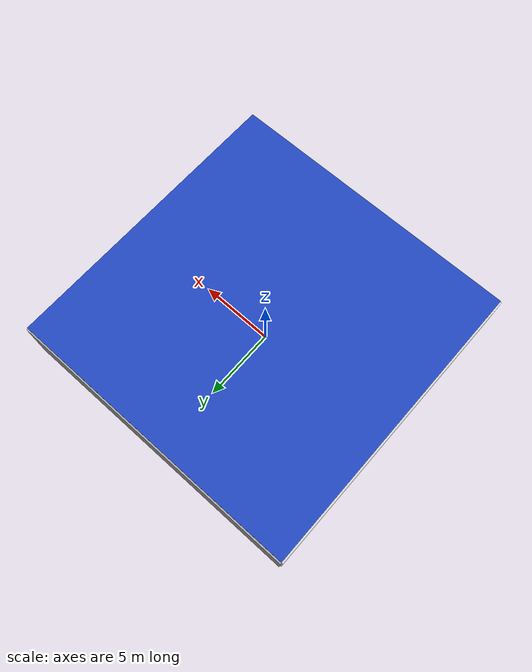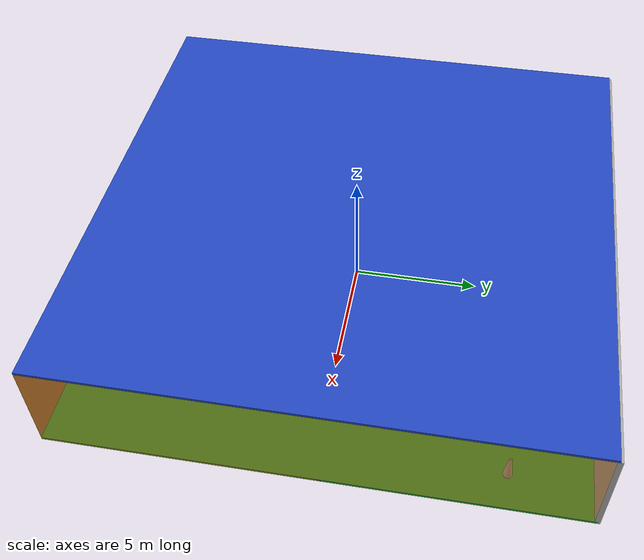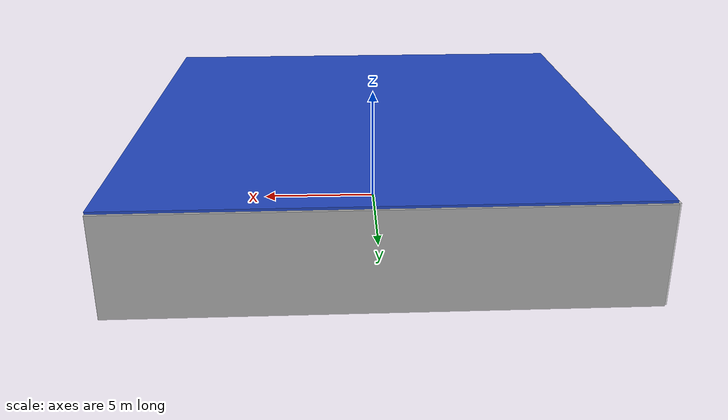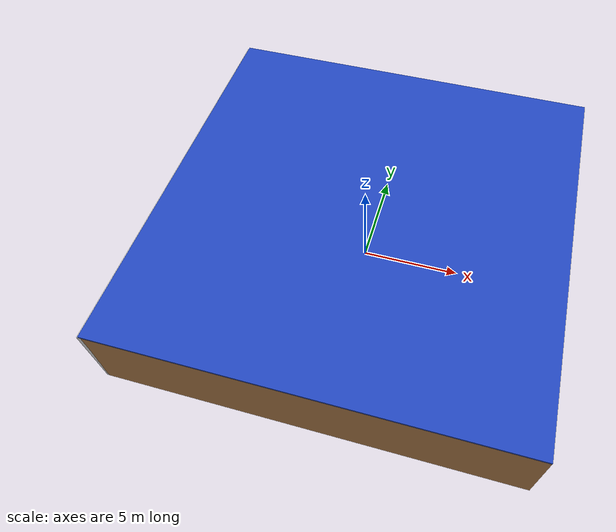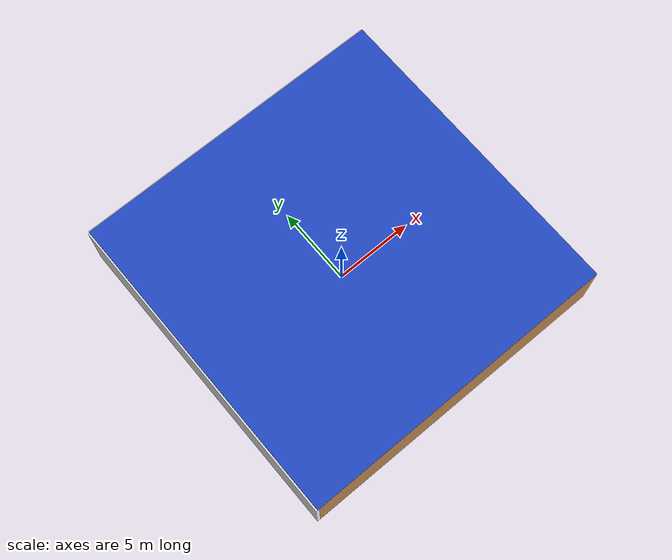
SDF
<sdf version="1.4">
 <world name="default">
  <physics type="ode">
   <max_step_size>0.001</max_step_size>
   <real_time_factor>1</real_time_factor>
   <real_time_update_rate>1000</real_time_update_rate>
   <gravity>0 0 -9.8</gravity>
  </physics>
  <scene><ambient>0.4 0.4 0.4 1</ambient><background>0.7 0.7 0.7 1</background><shadows>1</shadows></scene>
  <model name="Surrounding">
   <static>1</static>
   <link name="Ceiling">
    <collision name="Ceiling_Collision"><geometry><box><size>20 20 0.1</size></box></geometry></collision>
    <visual name="Ceiling_Visual">
     <geometry><box><size>20 20 0.1</size></box></geometry>
     <material>
      <script><uri>file://media/materials/scripts/gazebo.material</uri><name>Gazebo/Blue</name></script>
     </material>
    </visual>
    <pose>0 0 4.05 0 0 0</pose>
   </link>
   <link name="Wall_South">
    <collision name="Wall_South_Collision">
     <geometry><box><size>20 0 4</size></box></geometry>
     <pose>0 0 2 0 -0 0</pose>
    </collision>
    <visual name="Wall_South_Visual">
     <pose>0 0 2 0 -0 0</pose>
     <geometry><box><size>20 0 4</size></box></geometry>
     <material>
      <script><uri>file://media/materials/scripts/gazebo.material</uri><name>Gazebo/WoodFloor</name></script>
     </material>
    </visual>
    <velocity_decay><linear>0</linear><angular>0</angular></velocity_decay>
    <pose>0 -10 0 0 -0 0</pose>
   </link>
   <link name="Wall_East">
    <collision name="Wall_21_Collision">
     <geometry><box><size>20 0 4</size></box></geometry>
     <pose>0 0 2 0 -0 0</pose>
    </collision>
    <visual name="Wall_21_Visual">
     <pose>0 0 2 0 -0 0</pose>
     <geometry><box><size>20 0 4</size></box></geometry>
     <material>
      <script>
       <uri>file://media/materials/scripts/gazebo.material</uri>
       <name>Gazebo/OrangeTransparent</name>
      </script>
     </material>
    </visual>
    <velocity_decay><linear>0</linear><angular>0</angular></velocity_decay>
    <pose>10 0 0 0 -0 1.5708</pose>
   </link>
   <link name="Wall_North">
    <collision name="Wall_22_Collision">
     <geometry><box><size>20 0.2 4</size></box></geometry>
     <pose>0 0 2 0 -0 0</pose>
    </collision>
    <visual name="Wall_22_Visual">
     <pose>0 0 2 0 -0 0</pose>
     <geometry><box><size>20 0.2 4</size></box></geometry>
     <material>
      <script><uri>file://media/materials/scripts/gazebo.material</uri><name>Gazebo/Pioneer2Body</name></script>
     </material>
    </visual>
    <velocity_decay><linear>0</linear><angular>0</angular></velocity_decay>
    <pose>0 10 0 0 -0 0</pose>
   </link>
   <link name="Wall_West">
    <collision name="Wall_23_Collision">
     <geometry><box><size>20 0.2 4</size></box></geometry>
     <pose>0 0 2 0 -0 0</pose>
    </collision>
    <visual name="Wall_23_Visual">
     <pose>0 0 2 0 -0 0</pose>
     <geometry><box><size>20 0.2 4</size></box></geometry>
     <material>
      <script><uri>file://media/materials/scripts/gazebo.material</uri><name>Gazebo/WhiteGlow</name></script>
     </material>
    </visual>
    <velocity_decay><linear>0</linear><angular>0</angular></velocity_decay>
    <pose>-10 0 0 0 0 -1.5708</pose>
   </link>
   <link name="Ground_link">
    <collision name="collision">
     <pose>0 0 .05 0 -0 0</pose>
     <geometry><box><size>20 20 0.1</size></box></geometry>
    </collision>
    <visual name="visual">
     <pose>0 0 .05 0 -0 0</pose>
     <geometry><box><size>20 20 0.1</size></box></geometry>
     <material>
      <script><uri>file://media/materials/scripts/gazebo.material</uri><name>Gazebo/GreenGlow</name></script>
     </material>
    </visual>
   </link>
   <static>1</static>
  </model>
  <spherical_coordinates>
   <surface_model>EARTH_WGS84</surface_model>
   <latitude_deg>0</latitude_deg>
   <longitude_deg>0</longitude_deg>
   <elevation>0</elevation>
   <heading_deg>0</heading_deg>
  </spherical_coordinates>
  <light name="lightball_0" type="diffuse">
   <diffuse>0.8 0.8 0.8 1</diffuse>
   <specular>0.2 0.2 0.2 1</specular>
   <attenuation>
    <range>100</range>
    <constant>0.7</constant>
    <linear>0.01</linear>
    <quadratic>0.001</quadratic>
   </attenuation>
   <direction>-0.5 0.1 -0.9</direction>
   <pose>5.10047669687 -8.01126818519 2.43357413398 0 0 0</pose>
  </light>
  <include>
   <uri>model://textured_shapes</uri>
   <pose>-7.96756099652 0.36881184327 0 0 0 2.56109434365</pose>
  </include>
  <include><uri>model://table</uri><pose>-5.62236293048 6.6165041813 0 0 0 2.40417019664</pose></include>
  <include>
   <uri>model://construction_cone</uri>
   <pose>-2.43222069581 -6.90604457671 0 0 0 0.884618148809</pose>
  </include>
  <include>
   <uri>model://robocup_3Dsim_goal</uri>
   <pose>-1.40290532534 -3.61674312314 0 0 0 3.01386138007</pose>
  </include>
  <include>
   <uri>model://robocup_3Dsim_goal</uri>
   <pose>1.27168454091 0.559139777828 0 0 0 2.20374069237</pose>
  </include>
  <include>
   <uri>model://construction_cone</uri>
   <pose>8.66842054613 6.86990956966 0 0 0 1.54434474023</pose>
  </include>
 </world>
</sdf>

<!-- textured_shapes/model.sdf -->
<sdf version="1.6">
  <model name="textured_shapes">
    <pose>0 0 0.5 0 0 0</pose>
    <link name="box">
      <pose>0 -1.5 0 0 0 0</pose>
      <collision name="collision">
        <geometry>
          <box>
            <size>1 1 1</size>
          </box>
        </geometry>
      </collision>
      <visual name="visual">
        <geometry>
          <box>
            <size>1 1 1</size>
          </box>
        </geometry>
        <material>
          <script>
            <uri>model://../model_source/models/textured_shapes/materials/scripts</uri>
            <uri>model://../model_source/models/textured_shapes/materials/textures</uri>
            <name>TexturedShape/Squares</name>
          </script>
        </material>
      </visual>
    </link>
    <link name="sphere">
      <collision name="collision">
        <geometry>
          <sphere>
            <radius>0.5</radius>
          </sphere>
        </geometry>
      </collision>
      <visual name="visual">
        <geometry>
          <sphere>
            <radius>0.5</radius>
          </sphere>
        </geometry>
        <material>
          <script>
            <uri>model://../model_source/models/textured_shapes/materials/scripts</uri>
            <uri>model://../model_source/models/textured_shapes/materials/textures</uri>
            <name>TexturedShape/Squares</name>
          </script>
        </material>
      </visual>
    </link>
    <link name="cylinder">
      <pose>0 1.5 0 0 0 0</pose>
      <collision name="collision">
        <geometry>
          <cylinder>
            <radius>0.5</radius>
            <length>1</length>
          </cylinder>
        </geometry>
      </collision>
      <visual name="visual">
        <geometry>
          <cylinder>
            <radius>0.5</radius>
            <length>1</length>
          </cylinder>
        </geometry>
        <material>
          <script>
            <uri>model://../model_source/models/textured_shapes/materials/scripts</uri>
            <uri>model://../model_source/models/textured_shapes/materials/textures</uri>
            <name>TexturedShape/Squares</name>
          </script>
        </material>
      </visual>
    </link>
  </model>
</sdf>

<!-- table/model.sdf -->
<sdf version="1.5">
  <model name="table">
    <static>true</static>
    <link name="link">
      <collision name="surface">
        <pose>0 0 1.0 0 0 0</pose>
        <geometry>
          <box>
            <size>1.5 0.8 0.03</size>
          </box>
        </geometry>
        <surface>
          <friction>
            <ode>
              <mu>0.6</mu>
              <mu2>0.6</mu2>
            </ode>
          </friction>
        </surface>
      </collision>
      <visual name="visual1">
        <pose>0 0 1.0 0 0 0</pose>
        <geometry>
          <box>
            <size>1.5 0.8 0.03</size>
          </box>
        </geometry>
        <material>
          <script>
            <uri>model://media/materials/scripts/gazebo.material</uri>
            <name>Gazebo/Wood</name>
          </script>
        </material>
      </visual>
      <collision name="front_left_leg">
        <pose>0.68 0.38 0.5 0 0 0</pose>
        <geometry>
          <cylinder>
            <radius>0.02</radius>
            <length>1.0</length>
          </cylinder>
        </geometry>
      </collision>
      <visual name="front_left_leg">
        <pose>0.68 0.38 0.5 0 0 0</pose>
        <geometry>
          <cylinder>
            <radius>0.02</radius>
            <length>1.0</length>
          </cylinder>
        </geometry>
        <material>
          <script>
            <uri>model://media/materials/scripts/gazebo.material</uri>
            <name>Gazebo/Grey</name>
          </script>
        </material>
      </visual>
      <collision name="front_right_leg">
        <pose>0.68 -0.38 0.5 0 0 0</pose>
        <geometry>
          <cylinder>
            <radius>0.02</radius>
            <length>1.0</length>
          </cylinder>
        </geometry>
      </collision>
      <visual name="front_right_leg">
        <pose>0.68 -0.38 0.5 0 0 0</pose>
        <geometry>
          <cylinder>
            <radius>0.02</radius>
            <length>1.0</length>
          </cylinder>
        </geometry>
        <material>
          <script>
            <uri>model://media/materials/scripts/gazebo.material</uri>
            <name>Gazebo/Grey</name>
          </script>
        </material>
      </visual>
      <collision name="back_right_leg">
        <pose>-0.68 -0.38 0.5 0 0 0</pose>
        <geometry>
          <cylinder>
            <radius>0.02</radius>
            <length>1.0</length>
          </cylinder>
        </geometry>
      </collision>
      <visual name="back_right_leg">
        <pose>-0.68 -0.38 0.5 0 0 0</pose>
        <geometry>
          <cylinder>
            <radius>0.02</radius>
            <length>1.0</length>
          </cylinder>
        </geometry>
        <material>
          <script>
            <uri>model://media/materials/scripts/gazebo.material</uri>
            <name>Gazebo/Grey</name>
          </script>
        </material>
      </visual>
      <collision name="back_left_leg">
        <pose>-0.68 0.38 0.5 0 0 0</pose>
        <geometry>
          <cylinder>
            <radius>0.02</radius>
            <length>1.0</length>
          </cylinder>
        </geometry>
      </collision>
      <visual name="back_left_leg">
        <pose>-0.68 0.38 0.5 0 0 0</pose>
        <geometry>
          <cylinder>
            <radius>0.02</radius>
            <length>1.0</length>
          </cylinder>
        </geometry>
        <material>
          <script>
            <uri>model://media/materials/scripts/gazebo.material</uri>
            <name>Gazebo/Grey</name>
          </script>
        </material>
      </visual>
    </link>
  </model>
</sdf>

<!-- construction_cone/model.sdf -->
<sdf version="1.5">
  <model name="Construction Cone">
    <link name="link">
      <collision name="collision">
        <geometry>
          <mesh>
            <scale>10 10 10</scale>
            <uri>file://isr-testbed/construction_cone/meshes/construction_cone.dae</uri>
          </mesh>
        </geometry>
      </collision>
      <visual name="visual">
        <geometry>
          <mesh>
            <scale>10 10 10</scale>
            <uri>file://isr-testbed/construction_cone/meshes/construction_cone.dae</uri>
          </mesh>
        </geometry>
      </visual>
    </link>
  </model>
</sdf>

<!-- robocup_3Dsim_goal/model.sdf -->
<sdf version="1.5">
  <model name="robocup_3d_goal">
    <static>true</static>
    <link name="left_post">
      <pose>0 1.05 0.45 0 0 0</pose>
      <collision name="collision">
        <geometry>
          <cylinder>
            <radius>0.05</radius>
            <length>0.9</length>
          </cylinder>
        </geometry>
      </collision>
      <visual name="visual">
        <geometry>
          <cylinder>
            <radius>0.05</radius>
            <length>0.9</length>
          </cylinder>
        </geometry>
        <material>
          <script>
            <uri>file://media/materials/scripts/gazebo.material</uri>
            <name>Gazebo/ZincYellow</name>
          </script>
        </material>
      </visual>
    </link>
    <link name="left_support_horiz_lower">
      <pose>0.30 1.05 0.01 0 0 0</pose>
      <collision name="collision">
        <geometry>
          <box>
            <size>0.50 0.02 0.02</size>
          </box>
        </geometry>
      </collision>
      <visual name="visual">
        <geometry>
          <box>
            <size>0.50 0.02 0.02</size>
          </box>
        </geometry>
        <material>
          <script>
            <uri>file://media/materials/scripts/gazebo.material</uri>
            <name>Gazebo/White</name>
          </script>
        </material>
      </visual>
    </link>
    <link name="left_support_horiz_upper">
      <pose>0.30 1.05 0.79 0 0 0</pose>
      <collision name="collision">
        <geometry>
          <box>
            <size>0.50 0.02 0.02</size>
          </box>
        </geometry>
      </collision>
      <visual name="visual">
        <geometry>
          <box>
            <size>0.50 0.02 0.02</size>
          </box>
        </geometry>
        <material>
          <script>
            <uri>file://media/materials/scripts/gazebo.material</uri>
            <name>Gazebo/White</name>
          </script>
        </material>
      </visual>
    </link>
    <link name="left_support_vertical">
      <pose>0.56 1.05 0.4 0 1.5708 0</pose>
      <collision name="collision">
        <geometry>
          <box>
            <size>0.80 0.02 0.02</size>
          </box>
        </geometry>
      </collision>
      <visual name="visual">
        <geometry>
          <box>
            <size>0.80 0.02 0.02</size>
          </box>
        </geometry>
        <material>
          <script>
            <uri>file://media/materials/scripts/gazebo.material</uri>
            <name>Gazebo/White</name>
          </script>
        </material>
      </visual>
    </link>
    <link name="right_support_horiz_lower">
      <pose>0.30 -1.05 0.01 0 0 0</pose>
      <collision name="collision">
        <geometry>
          <box>
            <size>0.50 0.02 0.02</size>
          </box>
        </geometry>
      </collision>
      <visual name="visual">
        <geometry>
          <box>
            <size>0.50 0.02 0.02</size>
          </box>
        </geometry>
        <material>
          <script>
            <uri>file://media/materials/scripts/gazebo.material</uri>
            <name>Gazebo/White</name>
          </script>
        </material>
      </visual>
    </link>
    <link name="right_support_horiz_upper">
      <pose>0.30 -1.05 0.79 0 0 0</pose>
      <collision name="collision">
        <geometry>
          <box>
            <size>0.50 0.02 0.02</size>
          </box>
        </geometry>
      </collision>
      <visual name="visual">
        <geometry>
          <box>
            <size>0.50 0.02 0.02</size>
          </box>
        </geometry>
        <material>
          <script>
            <uri>file://media/materials/scripts/gazebo.material</uri>
            <name>Gazebo/White</name>
          </script>
        </material>
      </visual>
    </link>
    <link name="right_support_vertical">
      <pose>0.56 -1.05 0.4 0 1.5708 0</pose>
      <collision name="collision">
        <geometry>
          <box>
            <size>0.80 0.02 0.02</size>
          </box>
        </geometry>
      </collision>
      <visual name="visual">
        <geometry>
          <box>
            <size>0.80 0.02 0.02</size>
          </box>
        </geometry>
        <material>
          <script>
            <uri>file://media/materials/scripts/gazebo.material</uri>
            <name>Gazebo/White</name>
          </script>
        </material>
      </visual>
    </link>
    <link name="center_support_horiz_lower">
      <pose>0.56 0 0.01 0 1.5708 0</pose>
      <collision name="collision">
        <geometry>
          <box>
            <size>0.02 2.08 0.02</size>
          </box>
        </geometry>
      </collision>
      <visual name="visual">
        <geometry>
          <box>
            <size>0.02 2.08 0.02</size>
          </box>
        </geometry>
        <material>
          <script>
            <uri>file://media/materials/scripts/gazebo.material</uri>
            <name>Gazebo/White</name>
          </script>
        </material>
      </visual>
    </link>
    <link name="center_support_horiz_upper">
      <pose>0.56 0 0.79 0 1.5708 0</pose>
      <collision name="collision">
        <geometry>
          <box>
            <size>0.02 2.08 0.02</size>
          </box>
        </geometry>
      </collision>
      <visual name="visual">
        <geometry>
          <box>
            <size>0.02 2.08 0.02</size>
          </box>
        </geometry>
        <material>
          <script>
            <uri>file://media/materials/scripts/gazebo.material</uri>
            <name>Gazebo/White</name>
          </script>
        </material>
      </visual>
    </link>
    <link name="right_post">
      <pose>0 -1.05 0.45 0 0 0</pose>
      <collision name="collision">
        <geometry>
          <cylinder>
            <radius>0.05</radius>
            <length>0.9</length>
          </cylinder>
        </geometry>
      </collision>
      <visual name="visual">
        <geometry>
          <cylinder>
            <radius>0.05</radius>
            <length>0.9</length>
          </cylinder>
        </geometry>
        <material>
          <script>
            <uri>file://media/materials/scripts/gazebo.material</uri>
            <name>Gazebo/ZincYellow</name>
          </script>
        </material>
      </visual>
    </link>
    <link name="crossbar">
      <pose>0 0 0.85 1.57 1.57 0</pose>
      <collision name="collision">
        <geometry>
          <cylinder>
            <radius>0.05</radius>
            <length>2.0</length>
          </cylinder>
        </geometry>
      </collision>
      <visual name="visual">
        <geometry>
          <cylinder>
            <radius>0.05</radius>
            <length>2.0</length>
          </cylinder>
        </geometry>
        <material>
          <script>
            <uri>file://media/materials/scripts/gazebo.material</uri>
            <name>Gazebo/ZincYellow</name>
          </script>
        </material>
      </visual>
    </link>
    <link name="center_net">
      <pose>0.56 0 0.40 0 0 0</pose>
      <collision name="collision">
        <geometry>
          <box>
            <size>0.01 2.1 0.80</size>
          </box>
        </geometry>
      </collision>
      <visual name="visual">
        <geometry>
          <box>
            <size>0.01 2.1 0.80</size>
          </box>
        </geometry>
        <material>
          <script>
            <uri>model://../model_source/models/robocup09_spl_field/materials/scripts/</uri>
            <uri>model://../model_source/models/robocup09_spl_field/materials/textures/</uri>
            <name>RoboCup/Net</name>
          </script>
        </material>
      </visual>
    </link>
    <link name="left_net">
      <pose>0.30 1.05 0.40 0 0 0</pose>
      <collision name="collision">
        <geometry>
          <box>
            <size>0.50 0.01 0.76</size>
          </box>
        </geometry>
      </collision>
      <visual name="visual">
        <geometry>
          <box>
            <size>0.50 0.01 0.76</size>
          </box>
        </geometry>
        <material>
          <script>
            <uri>model://../model_source/models/robocup09_spl_field/materials/scripts/</uri>
            <uri>model://../model_source/models/robocup09_spl_field/materials/textures/</uri>
            <name>RoboCup/Net</name>
          </script>
        </material>
      </visual>
    </link>
    <link name="right_net">
      <pose>0.30 -1.05 0.40 0 0 0</pose>
      <collision name="collision">
        <geometry>
          <box>
            <size>0.50 0.01 0.76</size>
          </box>
        </geometry>
      </collision>
      <visual name="visual">
        <geometry>
          <box>
            <size>0.50 0.01 0.76</size>
          </box>
        </geometry>
        <material>
          <script>
            <uri>model://../model_source/models/robocup09_spl_field/materials/scripts/</uri>
            <uri>model://../model_source/models/robocup09_spl_field/materials/textures/</uri>
            <name>RoboCup/Net</name>
          </script>
        </material>
      </visual>
    </link>
  </model>
</sdf>
